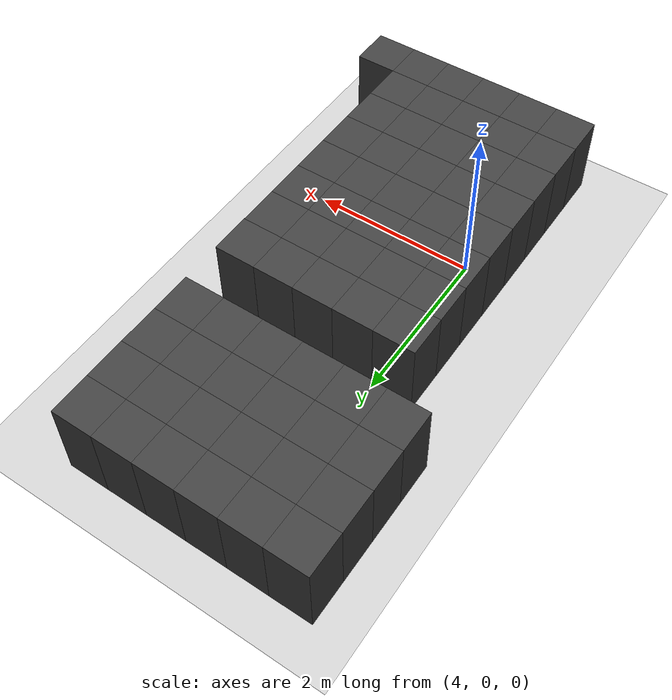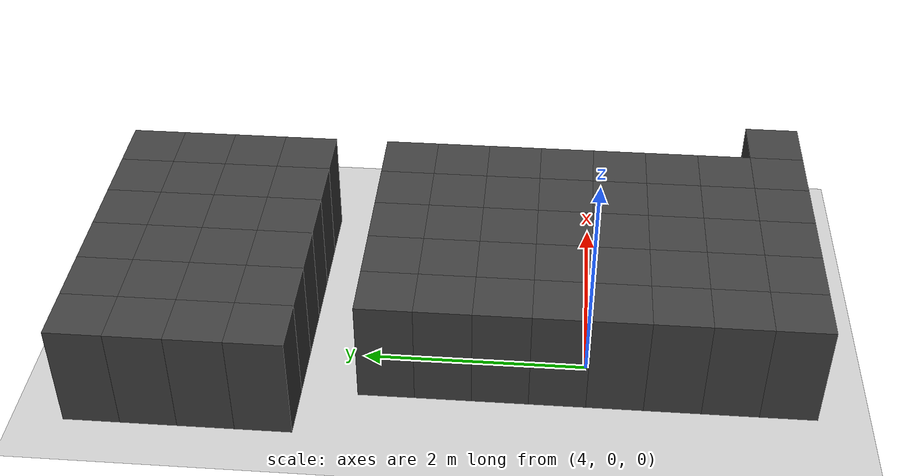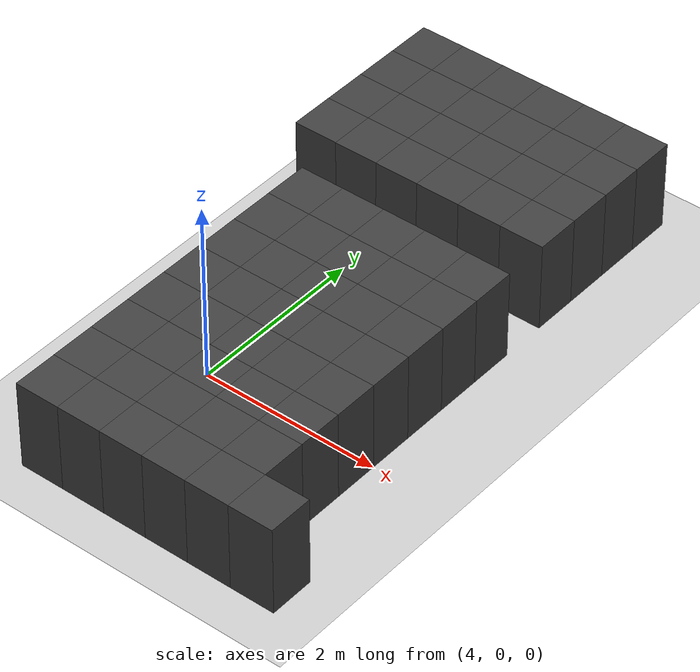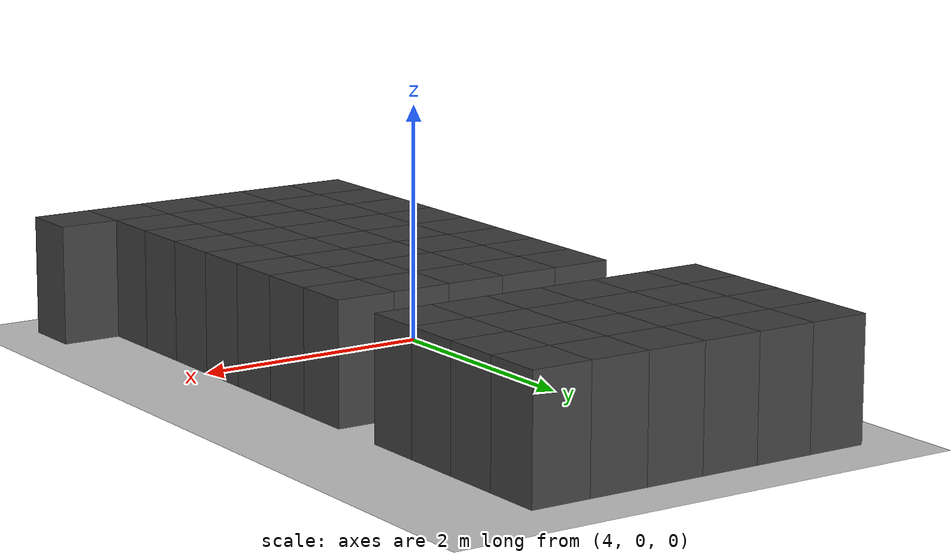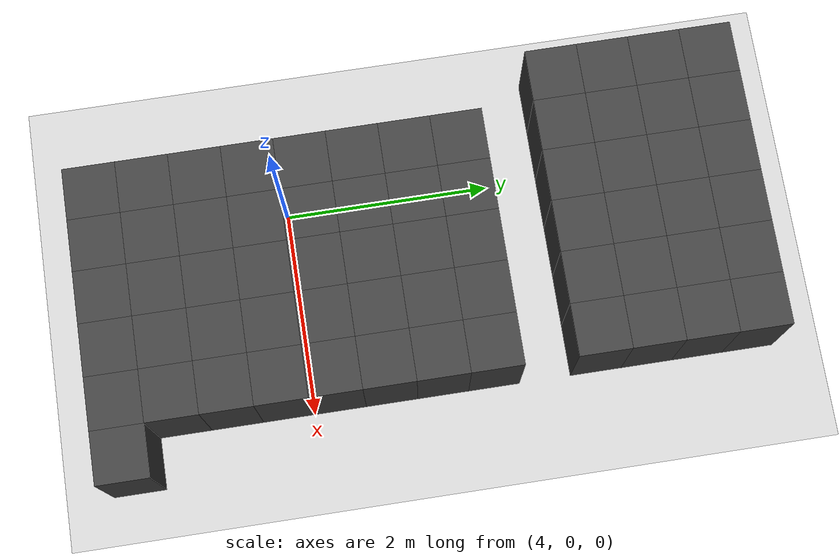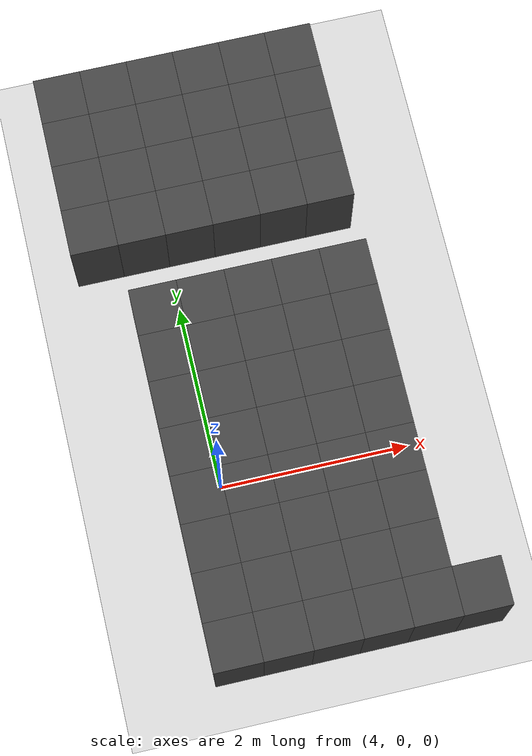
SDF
<sdf version="1.7">
 <world name="map_11515">
  <model name="ground_plane">
   <static>true</static>
   <link name="link">
    <collision name="collision">
     <geometry><plane><normal>0 0 1</normal><size>200 200</size></plane></geometry>
    </collision>
    <visual name="visual">
     <geometry><plane><normal>0 0 1</normal><size>200 200</size></plane></geometry>
     <material><ambient>0.8 0.8 0.8 1</ambient><diffuse>0.8 0.8 0.8 1</diffuse></material>
    </visual>
   </link>
  </model>
  <model name="maze_environment">
   <static>true</static>
   <link name="wall_704">
    <pose>3.250 4.250 0.500 0 0 0</pose>
    <collision name="col"><geometry><box><size>0.5 0.5 1.0</size></box></geometry></collision>
    <visual name="vis">
     <geometry><box><size>0.5 0.5 1.0</size></box></geometry>
     <material><ambient>0.15 0.15 0.15 1</ambient><diffuse>0.25 0.25 0.25 1</diffuse></material>
    </visual>
   </link>
   <link name="wall_705">
    <pose>3.750 4.250 0.500 0 0 0</pose>
    <collision name="col"><geometry><box><size>0.5 0.5 1.0</size></box></geometry></collision>
    <visual name="vis">
     <geometry><box><size>0.5 0.5 1.0</size></box></geometry>
     <material><ambient>0.15 0.15 0.15 1</ambient><diffuse>0.25 0.25 0.25 1</diffuse></material>
    </visual>
   </link>
   <link name="wall_706">
    <pose>4.250 4.250 0.500 0 0 0</pose>
    <collision name="col"><geometry><box><size>0.5 0.5 1.0</size></box></geometry></collision>
    <visual name="vis">
     <geometry><box><size>0.5 0.5 1.0</size></box></geometry>
     <material><ambient>0.15 0.15 0.15 1</ambient><diffuse>0.25 0.25 0.25 1</diffuse></material>
    </visual>
   </link>
   <link name="wall_707">
    <pose>4.750 4.250 0.500 0 0 0</pose>
    <collision name="col"><geometry><box><size>0.5 0.5 1.0</size></box></geometry></collision>
    <visual name="vis">
     <geometry><box><size>0.5 0.5 1.0</size></box></geometry>
     <material><ambient>0.15 0.15 0.15 1</ambient><diffuse>0.25 0.25 0.25 1</diffuse></material>
    </visual>
   </link>
   <link name="wall_708">
    <pose>5.250 4.250 0.500 0 0 0</pose>
    <collision name="col"><geometry><box><size>0.5 0.5 1.0</size></box></geometry></collision>
    <visual name="vis">
     <geometry><box><size>0.5 0.5 1.0</size></box></geometry>
     <material><ambient>0.15 0.15 0.15 1</ambient><diffuse>0.25 0.25 0.25 1</diffuse></material>
    </visual>
   </link>
   <link name="wall_709">
    <pose>5.750 4.250 0.500 0 0 0</pose>
    <collision name="col"><geometry><box><size>0.5 0.5 1.0</size></box></geometry></collision>
    <visual name="vis">
     <geometry><box><size>0.5 0.5 1.0</size></box></geometry>
     <material><ambient>0.15 0.15 0.15 1</ambient><diffuse>0.25 0.25 0.25 1</diffuse></material>
    </visual>
   </link>
   <link name="wall_746">
    <pose>3.250 3.750 0.500 0 0 0</pose>
    <collision name="col"><geometry><box><size>0.5 0.5 1.0</size></box></geometry></collision>
    <visual name="vis">
     <geometry><box><size>0.5 0.5 1.0</size></box></geometry>
     <material><ambient>0.15 0.15 0.15 1</ambient><diffuse>0.25 0.25 0.25 1</diffuse></material>
    </visual>
   </link>
   <link name="wall_747">
    <pose>3.750 3.750 0.500 0 0 0</pose>
    <collision name="col"><geometry><box><size>0.5 0.5 1.0</size></box></geometry></collision>
    <visual name="vis">
     <geometry><box><size>0.5 0.5 1.0</size></box></geometry>
     <material><ambient>0.15 0.15 0.15 1</ambient><diffuse>0.25 0.25 0.25 1</diffuse></material>
    </visual>
   </link>
   <link name="wall_748">
    <pose>4.250 3.750 0.500 0 0 0</pose>
    <collision name="col"><geometry><box><size>0.5 0.5 1.0</size></box></geometry></collision>
    <visual name="vis">
     <geometry><box><size>0.5 0.5 1.0</size></box></geometry>
     <material><ambient>0.15 0.15 0.15 1</ambient><diffuse>0.25 0.25 0.25 1</diffuse></material>
    </visual>
   </link>
   <link name="wall_749">
    <pose>4.750 3.750 0.500 0 0 0</pose>
    <collision name="col"><geometry><box><size>0.5 0.5 1.0</size></box></geometry></collision>
    <visual name="vis">
     <geometry><box><size>0.5 0.5 1.0</size></box></geometry>
     <material><ambient>0.15 0.15 0.15 1</ambient><diffuse>0.25 0.25 0.25 1</diffuse></material>
    </visual>
   </link>
   <link name="wall_750">
    <pose>5.250 3.750 0.500 0 0 0</pose>
    <collision name="col"><geometry><box><size>0.5 0.5 1.0</size></box></geometry></collision>
    <visual name="vis">
     <geometry><box><size>0.5 0.5 1.0</size></box></geometry>
     <material><ambient>0.15 0.15 0.15 1</ambient><diffuse>0.25 0.25 0.25 1</diffuse></material>
    </visual>
   </link>
   <link name="wall_751">
    <pose>5.750 3.750 0.500 0 0 0</pose>
    <collision name="col"><geometry><box><size>0.5 0.5 1.0</size></box></geometry></collision>
    <visual name="vis">
     <geometry><box><size>0.5 0.5 1.0</size></box></geometry>
     <material><ambient>0.15 0.15 0.15 1</ambient><diffuse>0.25 0.25 0.25 1</diffuse></material>
    </visual>
   </link>
   <link name="wall_788">
    <pose>3.250 3.250 0.500 0 0 0</pose>
    <collision name="col"><geometry><box><size>0.5 0.5 1.0</size></box></geometry></collision>
    <visual name="vis">
     <geometry><box><size>0.5 0.5 1.0</size></box></geometry>
     <material><ambient>0.15 0.15 0.15 1</ambient><diffuse>0.25 0.25 0.25 1</diffuse></material>
    </visual>
   </link>
   <link name="wall_789">
    <pose>3.750 3.250 0.500 0 0 0</pose>
    <collision name="col"><geometry><box><size>0.5 0.5 1.0</size></box></geometry></collision>
    <visual name="vis">
     <geometry><box><size>0.5 0.5 1.0</size></box></geometry>
     <material><ambient>0.15 0.15 0.15 1</ambient><diffuse>0.25 0.25 0.25 1</diffuse></material>
    </visual>
   </link>
   <link name="wall_790">
    <pose>4.250 3.250 0.500 0 0 0</pose>
    <collision name="col"><geometry><box><size>0.5 0.5 1.0</size></box></geometry></collision>
    <visual name="vis">
     <geometry><box><size>0.5 0.5 1.0</size></box></geometry>
     <material><ambient>0.15 0.15 0.15 1</ambient><diffuse>0.25 0.25 0.25 1</diffuse></material>
    </visual>
   </link>
   <link name="wall_791">
    <pose>4.750 3.250 0.500 0 0 0</pose>
    <collision name="col"><geometry><box><size>0.5 0.5 1.0</size></box></geometry></collision>
    <visual name="vis">
     <geometry><box><size>0.5 0.5 1.0</size></box></geometry>
     <material><ambient>0.15 0.15 0.15 1</ambient><diffuse>0.25 0.25 0.25 1</diffuse></material>
    </visual>
   </link>
   <link name="wall_792">
    <pose>5.250 3.250 0.500 0 0 0</pose>
    <collision name="col"><geometry><box><size>0.5 0.5 1.0</size></box></geometry></collision>
    <visual name="vis">
     <geometry><box><size>0.5 0.5 1.0</size></box></geometry>
     <material><ambient>0.15 0.15 0.15 1</ambient><diffuse>0.25 0.25 0.25 1</diffuse></material>
    </visual>
   </link>
   <link name="wall_793">
    <pose>5.750 3.250 0.500 0 0 0</pose>
    <collision name="col"><geometry><box><size>0.5 0.5 1.0</size></box></geometry></collision>
    <visual name="vis">
     <geometry><box><size>0.5 0.5 1.0</size></box></geometry>
     <material><ambient>0.15 0.15 0.15 1</ambient><diffuse>0.25 0.25 0.25 1</diffuse></material>
    </visual>
   </link>
   <link name="wall_824">
    <pose>3.250 2.750 0.500 0 0 0</pose>
    <collision name="col"><geometry><box><size>0.5 0.5 1.0</size></box></geometry></collision>
    <visual name="vis">
     <geometry><box><size>0.5 0.5 1.0</size></box></geometry>
     <material><ambient>0.15 0.15 0.15 1</ambient><diffuse>0.25 0.25 0.25 1</diffuse></material>
    </visual>
   </link>
   <link name="wall_825">
    <pose>3.750 2.750 0.500 0 0 0</pose>
    <collision name="col"><geometry><box><size>0.5 0.5 1.0</size></box></geometry></collision>
    <visual name="vis">
     <geometry><box><size>0.5 0.5 1.0</size></box></geometry>
     <material><ambient>0.15 0.15 0.15 1</ambient><diffuse>0.25 0.25 0.25 1</diffuse></material>
    </visual>
   </link>
   <link name="wall_826">
    <pose>4.250 2.750 0.500 0 0 0</pose>
    <collision name="col"><geometry><box><size>0.5 0.5 1.0</size></box></geometry></collision>
    <visual name="vis">
     <geometry><box><size>0.5 0.5 1.0</size></box></geometry>
     <material><ambient>0.15 0.15 0.15 1</ambient><diffuse>0.25 0.25 0.25 1</diffuse></material>
    </visual>
   </link>
   <link name="wall_827">
    <pose>4.750 2.750 0.500 0 0 0</pose>
    <collision name="col"><geometry><box><size>0.5 0.5 1.0</size></box></geometry></collision>
    <visual name="vis">
     <geometry><box><size>0.5 0.5 1.0</size></box></geometry>
     <material><ambient>0.15 0.15 0.15 1</ambient><diffuse>0.25 0.25 0.25 1</diffuse></material>
    </visual>
   </link>
   <link name="wall_828">
    <pose>5.250 2.750 0.500 0 0 0</pose>
    <collision name="col"><geometry><box><size>0.5 0.5 1.0</size></box></geometry></collision>
    <visual name="vis">
     <geometry><box><size>0.5 0.5 1.0</size></box></geometry>
     <material><ambient>0.15 0.15 0.15 1</ambient><diffuse>0.25 0.25 0.25 1</diffuse></material>
    </visual>
   </link>
   <link name="wall_829">
    <pose>5.750 2.750 0.500 0 0 0</pose>
    <collision name="col"><geometry><box><size>0.5 0.5 1.0</size></box></geometry></collision>
    <visual name="vis">
     <geometry><box><size>0.5 0.5 1.0</size></box></geometry>
     <material><ambient>0.15 0.15 0.15 1</ambient><diffuse>0.25 0.25 0.25 1</diffuse></material>
    </visual>
   </link>
   <link name="wall_887">
    <pose>3.750 1.750 0.500 0 0 0</pose>
    <collision name="col"><geometry><box><size>0.5 0.5 1.0</size></box></geometry></collision>
    <visual name="vis">
     <geometry><box><size>0.5 0.5 1.0</size></box></geometry>
     <material><ambient>0.15 0.15 0.15 1</ambient><diffuse>0.25 0.25 0.25 1</diffuse></material>
    </visual>
   </link>
   <link name="wall_888">
    <pose>4.250 1.750 0.500 0 0 0</pose>
    <collision name="col"><geometry><box><size>0.5 0.5 1.0</size></box></geometry></collision>
    <visual name="vis">
     <geometry><box><size>0.5 0.5 1.0</size></box></geometry>
     <material><ambient>0.15 0.15 0.15 1</ambient><diffuse>0.25 0.25 0.25 1</diffuse></material>
    </visual>
   </link>
   <link name="wall_889">
    <pose>4.750 1.750 0.500 0 0 0</pose>
    <collision name="col"><geometry><box><size>0.5 0.5 1.0</size></box></geometry></collision>
    <visual name="vis">
     <geometry><box><size>0.5 0.5 1.0</size></box></geometry>
     <material><ambient>0.15 0.15 0.15 1</ambient><diffuse>0.25 0.25 0.25 1</diffuse></material>
    </visual>
   </link>
   <link name="wall_890">
    <pose>5.250 1.750 0.500 0 0 0</pose>
    <collision name="col"><geometry><box><size>0.5 0.5 1.0</size></box></geometry></collision>
    <visual name="vis">
     <geometry><box><size>0.5 0.5 1.0</size></box></geometry>
     <material><ambient>0.15 0.15 0.15 1</ambient><diffuse>0.25 0.25 0.25 1</diffuse></material>
    </visual>
   </link>
   <link name="wall_891">
    <pose>5.750 1.750 0.500 0 0 0</pose>
    <collision name="col"><geometry><box><size>0.5 0.5 1.0</size></box></geometry></collision>
    <visual name="vis">
     <geometry><box><size>0.5 0.5 1.0</size></box></geometry>
     <material><ambient>0.15 0.15 0.15 1</ambient><diffuse>0.25 0.25 0.25 1</diffuse></material>
    </visual>
   </link>
   <link name="wall_923">
    <pose>3.750 1.250 0.500 0 0 0</pose>
    <collision name="col"><geometry><box><size>0.5 0.5 1.0</size></box></geometry></collision>
    <visual name="vis">
     <geometry><box><size>0.5 0.5 1.0</size></box></geometry>
     <material><ambient>0.15 0.15 0.15 1</ambient><diffuse>0.25 0.25 0.25 1</diffuse></material>
    </visual>
   </link>
   <link name="wall_924">
    <pose>4.250 1.250 0.500 0 0 0</pose>
    <collision name="col"><geometry><box><size>0.5 0.5 1.0</size></box></geometry></collision>
    <visual name="vis">
     <geometry><box><size>0.5 0.5 1.0</size></box></geometry>
     <material><ambient>0.15 0.15 0.15 1</ambient><diffuse>0.25 0.25 0.25 1</diffuse></material>
    </visual>
   </link>
   <link name="wall_925">
    <pose>4.750 1.250 0.500 0 0 0</pose>
    <collision name="col"><geometry><box><size>0.5 0.5 1.0</size></box></geometry></collision>
    <visual name="vis">
     <geometry><box><size>0.5 0.5 1.0</size></box></geometry>
     <material><ambient>0.15 0.15 0.15 1</ambient><diffuse>0.25 0.25 0.25 1</diffuse></material>
    </visual>
   </link>
   <link name="wall_926">
    <pose>5.250 1.250 0.500 0 0 0</pose>
    <collision name="col"><geometry><box><size>0.5 0.5 1.0</size></box></geometry></collision>
    <visual name="vis">
     <geometry><box><size>0.5 0.5 1.0</size></box></geometry>
     <material><ambient>0.15 0.15 0.15 1</ambient><diffuse>0.25 0.25 0.25 1</diffuse></material>
    </visual>
   </link>
   <link name="wall_927">
    <pose>5.750 1.250 0.500 0 0 0</pose>
    <collision name="col"><geometry><box><size>0.5 0.5 1.0</size></box></geometry></collision>
    <visual name="vis">
     <geometry><box><size>0.5 0.5 1.0</size></box></geometry>
     <material><ambient>0.15 0.15 0.15 1</ambient><diffuse>0.25 0.25 0.25 1</diffuse></material>
    </visual>
   </link>
   <link name="wall_964">
    <pose>3.750 0.750 0.500 0 0 0</pose>
    <collision name="col"><geometry><box><size>0.5 0.5 1.0</size></box></geometry></collision>
    <visual name="vis">
     <geometry><box><size>0.5 0.5 1.0</size></box></geometry>
     <material><ambient>0.15 0.15 0.15 1</ambient><diffuse>0.25 0.25 0.25 1</diffuse></material>
    </visual>
   </link>
   <link name="wall_965">
    <pose>4.250 0.750 0.500 0 0 0</pose>
    <collision name="col"><geometry><box><size>0.5 0.5 1.0</size></box></geometry></collision>
    <visual name="vis">
     <geometry><box><size>0.5 0.5 1.0</size></box></geometry>
     <material><ambient>0.15 0.15 0.15 1</ambient><diffuse>0.25 0.25 0.25 1</diffuse></material>
    </visual>
   </link>
   <link name="wall_966">
    <pose>4.750 0.750 0.500 0 0 0</pose>
    <collision name="col"><geometry><box><size>0.5 0.5 1.0</size></box></geometry></collision>
    <visual name="vis">
     <geometry><box><size>0.5 0.5 1.0</size></box></geometry>
     <material><ambient>0.15 0.15 0.15 1</ambient><diffuse>0.25 0.25 0.25 1</diffuse></material>
    </visual>
   </link>
   <link name="wall_967">
    <pose>5.250 0.750 0.500 0 0 0</pose>
    <collision name="col"><geometry><box><size>0.5 0.5 1.0</size></box></geometry></collision>
    <visual name="vis">
     <geometry><box><size>0.5 0.5 1.0</size></box></geometry>
     <material><ambient>0.15 0.15 0.15 1</ambient><diffuse>0.25 0.25 0.25 1</diffuse></material>
    </visual>
   </link>
   <link name="wall_968">
    <pose>5.750 0.750 0.500 0 0 0</pose>
    <collision name="col"><geometry><box><size>0.5 0.5 1.0</size></box></geometry></collision>
    <visual name="vis">
     <geometry><box><size>0.5 0.5 1.0</size></box></geometry>
     <material><ambient>0.15 0.15 0.15 1</ambient><diffuse>0.25 0.25 0.25 1</diffuse></material>
    </visual>
   </link>
   <link name="wall_1013">
    <pose>3.750 0.250 0.500 0 0 0</pose>
    <collision name="col"><geometry><box><size>0.5 0.5 1.0</size></box></geometry></collision>
    <visual name="vis">
     <geometry><box><size>0.5 0.5 1.0</size></box></geometry>
     <material><ambient>0.15 0.15 0.15 1</ambient><diffuse>0.25 0.25 0.25 1</diffuse></material>
    </visual>
   </link>
   <link name="wall_1014">
    <pose>4.250 0.250 0.500 0 0 0</pose>
    <collision name="col"><geometry><box><size>0.5 0.5 1.0</size></box></geometry></collision>
    <visual name="vis">
     <geometry><box><size>0.5 0.5 1.0</size></box></geometry>
     <material><ambient>0.15 0.15 0.15 1</ambient><diffuse>0.25 0.25 0.25 1</diffuse></material>
    </visual>
   </link>
   <link name="wall_1015">
    <pose>4.750 0.250 0.500 0 0 0</pose>
    <collision name="col"><geometry><box><size>0.5 0.5 1.0</size></box></geometry></collision>
    <visual name="vis">
     <geometry><box><size>0.5 0.5 1.0</size></box></geometry>
     <material><ambient>0.15 0.15 0.15 1</ambient><diffuse>0.25 0.25 0.25 1</diffuse></material>
    </visual>
   </link>
   <link name="wall_1016">
    <pose>5.250 0.250 0.500 0 0 0</pose>
    <collision name="col"><geometry><box><size>0.5 0.5 1.0</size></box></geometry></collision>
    <visual name="vis">
     <geometry><box><size>0.5 0.5 1.0</size></box></geometry>
     <material><ambient>0.15 0.15 0.15 1</ambient><diffuse>0.25 0.25 0.25 1</diffuse></material>
    </visual>
   </link>
   <link name="wall_1017">
    <pose>5.750 0.250 0.500 0 0 0</pose>
    <collision name="col"><geometry><box><size>0.5 0.5 1.0</size></box></geometry></collision>
    <visual name="vis">
     <geometry><box><size>0.5 0.5 1.0</size></box></geometry>
     <material><ambient>0.15 0.15 0.15 1</ambient><diffuse>0.25 0.25 0.25 1</diffuse></material>
    </visual>
   </link>
   <link name="wall_1062">
    <pose>3.750 -0.250 0.500 0 0 0</pose>
    <collision name="col"><geometry><box><size>0.5 0.5 1.0</size></box></geometry></collision>
    <visual name="vis">
     <geometry><box><size>0.5 0.5 1.0</size></box></geometry>
     <material><ambient>0.15 0.15 0.15 1</ambient><diffuse>0.25 0.25 0.25 1</diffuse></material>
    </visual>
   </link>
   <link name="wall_1063">
    <pose>4.250 -0.250 0.500 0 0 0</pose>
    <collision name="col"><geometry><box><size>0.5 0.5 1.0</size></box></geometry></collision>
    <visual name="vis">
     <geometry><box><size>0.5 0.5 1.0</size></box></geometry>
     <material><ambient>0.15 0.15 0.15 1</ambient><diffuse>0.25 0.25 0.25 1</diffuse></material>
    </visual>
   </link>
   <link name="wall_1064">
    <pose>4.750 -0.250 0.500 0 0 0</pose>
    <collision name="col"><geometry><box><size>0.5 0.5 1.0</size></box></geometry></collision>
    <visual name="vis">
     <geometry><box><size>0.5 0.5 1.0</size></box></geometry>
     <material><ambient>0.15 0.15 0.15 1</ambient><diffuse>0.25 0.25 0.25 1</diffuse></material>
    </visual>
   </link>
   <link name="wall_1065">
    <pose>5.250 -0.250 0.500 0 0 0</pose>
    <collision name="col"><geometry><box><size>0.5 0.5 1.0</size></box></geometry></collision>
    <visual name="vis">
     <geometry><box><size>0.5 0.5 1.0</size></box></geometry>
     <material><ambient>0.15 0.15 0.15 1</ambient><diffuse>0.25 0.25 0.25 1</diffuse></material>
    </visual>
   </link>
   <link name="wall_1066">
    <pose>5.750 -0.250 0.500 0 0 0</pose>
    <collision name="col"><geometry><box><size>0.5 0.5 1.0</size></box></geometry></collision>
    <visual name="vis">
     <geometry><box><size>0.5 0.5 1.0</size></box></geometry>
     <material><ambient>0.15 0.15 0.15 1</ambient><diffuse>0.25 0.25 0.25 1</diffuse></material>
    </visual>
   </link>
   <link name="wall_1111">
    <pose>3.750 -0.750 0.500 0 0 0</pose>
    <collision name="col"><geometry><box><size>0.5 0.5 1.0</size></box></geometry></collision>
    <visual name="vis">
     <geometry><box><size>0.5 0.5 1.0</size></box></geometry>
     <material><ambient>0.15 0.15 0.15 1</ambient><diffuse>0.25 0.25 0.25 1</diffuse></material>
    </visual>
   </link>
   <link name="wall_1112">
    <pose>4.250 -0.750 0.500 0 0 0</pose>
    <collision name="col"><geometry><box><size>0.5 0.5 1.0</size></box></geometry></collision>
    <visual name="vis">
     <geometry><box><size>0.5 0.5 1.0</size></box></geometry>
     <material><ambient>0.15 0.15 0.15 1</ambient><diffuse>0.25 0.25 0.25 1</diffuse></material>
    </visual>
   </link>
   <link name="wall_1113">
    <pose>4.750 -0.750 0.500 0 0 0</pose>
    <collision name="col"><geometry><box><size>0.5 0.5 1.0</size></box></geometry></collision>
    <visual name="vis">
     <geometry><box><size>0.5 0.5 1.0</size></box></geometry>
     <material><ambient>0.15 0.15 0.15 1</ambient><diffuse>0.25 0.25 0.25 1</diffuse></material>
    </visual>
   </link>
   <link name="wall_1114">
    <pose>5.250 -0.750 0.500 0 0 0</pose>
    <collision name="col"><geometry><box><size>0.5 0.5 1.0</size></box></geometry></collision>
    <visual name="vis">
     <geometry><box><size>0.5 0.5 1.0</size></box></geometry>
     <material><ambient>0.15 0.15 0.15 1</ambient><diffuse>0.25 0.25 0.25 1</diffuse></material>
    </visual>
   </link>
   <link name="wall_1115">
    <pose>5.750 -0.750 0.500 0 0 0</pose>
    <collision name="col"><geometry><box><size>0.5 0.5 1.0</size></box></geometry></collision>
    <visual name="vis">
     <geometry><box><size>0.5 0.5 1.0</size></box></geometry>
     <material><ambient>0.15 0.15 0.15 1</ambient><diffuse>0.25 0.25 0.25 1</diffuse></material>
    </visual>
   </link>
   <link name="wall_1160">
    <pose>3.750 -1.250 0.500 0 0 0</pose>
    <collision name="col"><geometry><box><size>0.5 0.5 1.0</size></box></geometry></collision>
    <visual name="vis">
     <geometry><box><size>0.5 0.5 1.0</size></box></geometry>
     <material><ambient>0.15 0.15 0.15 1</ambient><diffuse>0.25 0.25 0.25 1</diffuse></material>
    </visual>
   </link>
   <link name="wall_1161">
    <pose>4.250 -1.250 0.500 0 0 0</pose>
    <collision name="col"><geometry><box><size>0.5 0.5 1.0</size></box></geometry></collision>
    <visual name="vis">
     <geometry><box><size>0.5 0.5 1.0</size></box></geometry>
     <material><ambient>0.15 0.15 0.15 1</ambient><diffuse>0.25 0.25 0.25 1</diffuse></material>
    </visual>
   </link>
   <link name="wall_1162">
    <pose>4.750 -1.250 0.500 0 0 0</pose>
    <collision name="col"><geometry><box><size>0.5 0.5 1.0</size></box></geometry></collision>
    <visual name="vis">
     <geometry><box><size>0.5 0.5 1.0</size></box></geometry>
     <material><ambient>0.15 0.15 0.15 1</ambient><diffuse>0.25 0.25 0.25 1</diffuse></material>
    </visual>
   </link>
   <link name="wall_1163">
    <pose>5.250 -1.250 0.500 0 0 0</pose>
    <collision name="col"><geometry><box><size>0.5 0.5 1.0</size></box></geometry></collision>
    <visual name="vis">
     <geometry><box><size>0.5 0.5 1.0</size></box></geometry>
     <material><ambient>0.15 0.15 0.15 1</ambient><diffuse>0.25 0.25 0.25 1</diffuse></material>
    </visual>
   </link>
   <link name="wall_1164">
    <pose>5.750 -1.250 0.500 0 0 0</pose>
    <collision name="col"><geometry><box><size>0.5 0.5 1.0</size></box></geometry></collision>
    <visual name="vis">
     <geometry><box><size>0.5 0.5 1.0</size></box></geometry>
     <material><ambient>0.15 0.15 0.15 1</ambient><diffuse>0.25 0.25 0.25 1</diffuse></material>
    </visual>
   </link>
   <link name="wall_1209">
    <pose>3.750 -1.750 0.500 0 0 0</pose>
    <collision name="col"><geometry><box><size>0.5 0.5 1.0</size></box></geometry></collision>
    <visual name="vis">
     <geometry><box><size>0.5 0.5 1.0</size></box></geometry>
     <material><ambient>0.15 0.15 0.15 1</ambient><diffuse>0.25 0.25 0.25 1</diffuse></material>
    </visual>
   </link>
   <link name="wall_1210">
    <pose>4.250 -1.750 0.500 0 0 0</pose>
    <collision name="col"><geometry><box><size>0.5 0.5 1.0</size></box></geometry></collision>
    <visual name="vis">
     <geometry><box><size>0.5 0.5 1.0</size></box></geometry>
     <material><ambient>0.15 0.15 0.15 1</ambient><diffuse>0.25 0.25 0.25 1</diffuse></material>
    </visual>
   </link>
   <link name="wall_1211">
    <pose>4.750 -1.750 0.500 0 0 0</pose>
    <collision name="col"><geometry><box><size>0.5 0.5 1.0</size></box></geometry></collision>
    <visual name="vis">
     <geometry><box><size>0.5 0.5 1.0</size></box></geometry>
     <material><ambient>0.15 0.15 0.15 1</ambient><diffuse>0.25 0.25 0.25 1</diffuse></material>
    </visual>
   </link>
   <link name="wall_1212">
    <pose>5.250 -1.750 0.500 0 0 0</pose>
    <collision name="col"><geometry><box><size>0.5 0.5 1.0</size></box></geometry></collision>
    <visual name="vis">
     <geometry><box><size>0.5 0.5 1.0</size></box></geometry>
     <material><ambient>0.15 0.15 0.15 1</ambient><diffuse>0.25 0.25 0.25 1</diffuse></material>
    </visual>
   </link>
   <link name="wall_1213">
    <pose>5.750 -1.750 0.500 0 0 0</pose>
    <collision name="col"><geometry><box><size>0.5 0.5 1.0</size></box></geometry></collision>
    <visual name="vis">
     <geometry><box><size>0.5 0.5 1.0</size></box></geometry>
     <material><ambient>0.15 0.15 0.15 1</ambient><diffuse>0.25 0.25 0.25 1</diffuse></material>
    </visual>
   </link>
   <link name="wall_1214">
    <pose>6.250 -1.750 0.500 0 0 0</pose>
    <collision name="col"><geometry><box><size>0.5 0.5 1.0</size></box></geometry></collision>
    <visual name="vis">
     <geometry><box><size>0.5 0.5 1.0</size></box></geometry>
     <material><ambient>0.15 0.15 0.15 1</ambient><diffuse>0.25 0.25 0.25 1</diffuse></material>
    </visual>
   </link>
  </model>
 </world>
</sdf>
